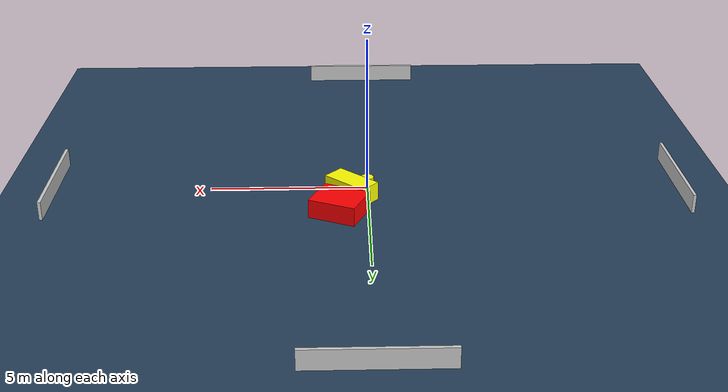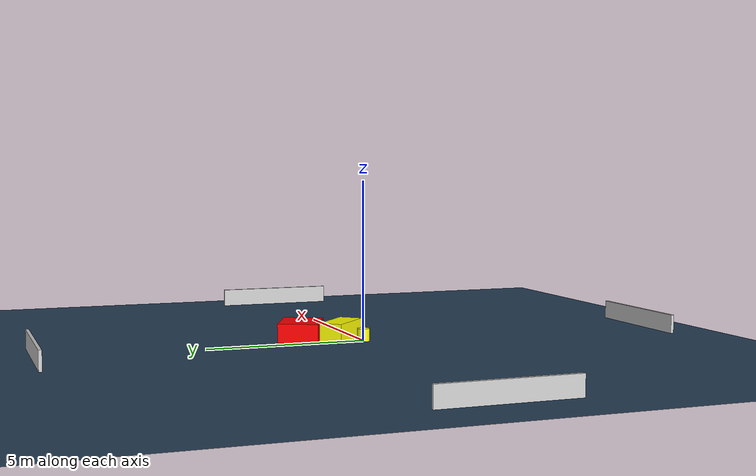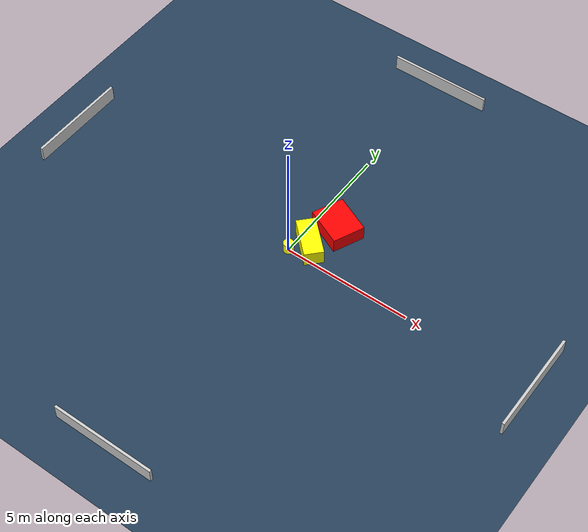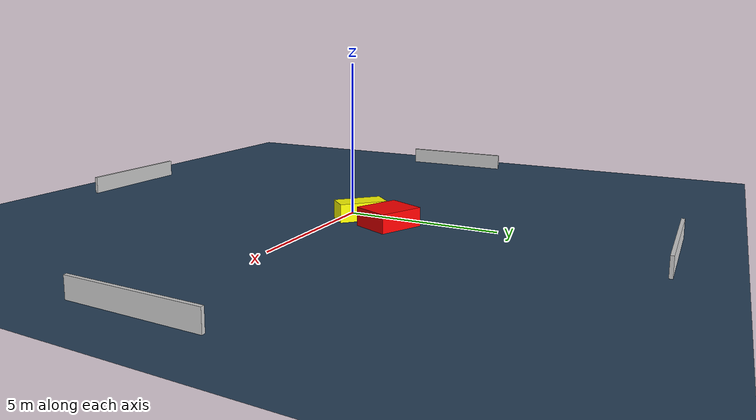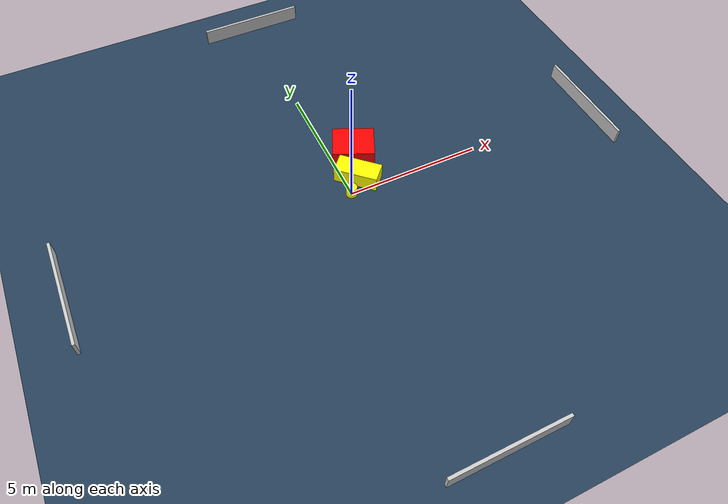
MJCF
<?xml version="1.0" ?>
<mujoco model="generated_environment">
  <option timestep="0.01" integrator="RK4" cone="elliptic"/>
  <default>
    <geom density="1"/>
  </default>
  <asset>
    <texture builtin="gradient" height="3072" name="skybox" rgb1="0.3 0.5 0.7" rgb2="0 0 0" type="skybox" width="512"/>
    <texture builtin="checker" height="300" name="groundplane" rgb1="0.2 0.3 0.4" rgb2="0.1 0.2 0.3" type="2d" width="300"/>
    <material name="groundplane" reflectance="0.2" texrepeat="5 5" texture="groundplane"/>
  </asset>
  <worldbody>
    <light dir="0 0 -1" directional="true" pos="0 0 1.5"/>
    <geom condim="3" friction="0.5 0.005 0.001" material="groundplane" name="floor" pos="0 0 0" size="0 0 0.05" type="plane"/>
    <body name="walls">
      <geom name="wall_1" condim="4" pos="-10.0 0.0 0.3" rgba="0.800000011920929 0.800000011920929 0.800000011920929 1.0" size="0.05 2.0 0.3" type="box"/>
      <geom name="wall_2" condim="4" pos="10.0 0.0 0.3" rgba="0.800000011920929 0.800000011920929 0.800000011920929 1.0" size="0.05 2.0 0.3" type="box"/>
      <geom name="wall_3" condim="4" pos="0.0 -10.0 0.3" rgba="0.800000011920929 0.800000011920929 0.800000011920929 1.0" size="2.0 0.05 0.3" type="box"/>
      <geom name="wall_4" condim="4" pos="0.0 10.0 0.3" rgba="0.800000011920929 0.800000011920929 0.800000011920929 1.0" size="2.0 0.05 0.3" type="box"/>
    </body>
    <body name="robot">
      <joint name="joint_x" type="slide" pos="0 0 0" axis="1 0 0"/>
      <joint name="joint_y" type="slide" pos="0 0 0" axis="0 1 0"/>
      <geom name="robot" type="cylinder" pos="0.0 0.0 0.2" size="0.2 0.2 0.0" mass="5.0" friction="1.0 0.005 0.0001" condim="4" rgba="1.0 1.0 0.0 1.0"/>
    </body>
    <body name="obstacle_1_movable">
      <geom name="obstacle_1_movable" condim="4" pos="0.5178166906580245 0.5651179327157126 0.3" euler="0 0 46.804842056692124" friction="0.0 0.005 0.001" rgba="1.0 1.0 0.0 1.0" size="0.3680611582189205 0.7919242477725035 0.3" type="box" mass="0.1"/>
      <joint type="free"/>
    </body>
    <body name="obstacle_2_static">
      <geom name="obstacle_2_static" condim="4" pos="0.9028327340403796 1.7682037529899217 0.3" euler="0 0 155.7286562601349" friction="0.0 0.005 0.001" rgba="1.0 0.0 0.0 1.0" size="0.7648813561264203 0.6289371370539554 0.3" type="box"/>
    </body>
  </worldbody>
  <actuator>
    <motor name="actuator_x" joint="joint_x" gear="1" ctrlrange="-1 1"/>
    <motor name="actuator_y" joint="joint_y" gear="1" ctrlrange="-1 1"/>
  </actuator>
</mujoco>
